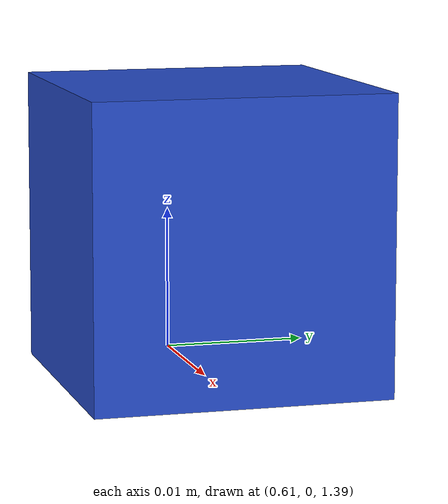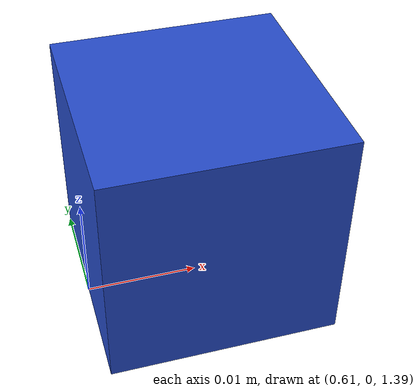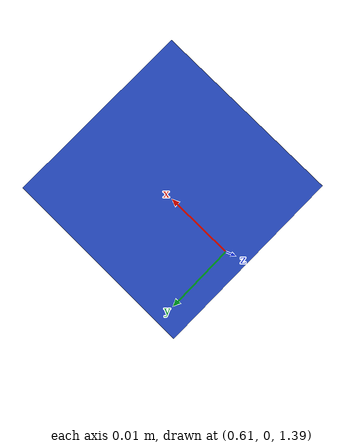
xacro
<?xml version="1.0" ?>
<robot name="sawyer_top_camera" xmlns:xacro="http://www.ros.org/wiki/xacro">

  <link name="world" />

  <xacro:property name="cameraSize" value="0.02" />
  <xacro:property name="cameraMass" value="0.02" />

<link name="camera">
  <collision>
    <origin xyz="0 0 0" rpy="0 0 0"/>
    <geometry>
      <box size="${cameraSize} ${cameraSize} ${cameraSize}"/>
    </geometry>
  </collision>

  <visual>
    <origin xyz="0 0 0" rpy="0 0 0"/>
    <geometry>
      <box size="${cameraSize} ${cameraSize} ${cameraSize}"/>
    </geometry>
    <material name="blue"/>
  </visual>

  <inertial>
        <mass value="0.001" />
        <origin xyz="0 0 0" rpy="0 0 0" />
        <inertia ixx="0.0001" ixy="0" ixz="0" iyy="0.0001" iyz="0" izz="0.0001"/>
  </inertial>
</link>

<joint name="camera_joint" type="fixed">
    <parent link="world" />
    <child link = "camera" />
    <origin xyz="0.62 0.0 1.4" rpy="0.0 1.57 3.14" />
  </joint>

  <gazebo reference="camera">
  <material>Gazebo/GreyTransparent</material>
 <sensor type="camera" name="camera1">
    <update_rate>30.0</update_rate>
    <camera name="head">
      <horizontal_fov>1.3962634</horizontal_fov>
      <image>
        <width>200</width>
        <height>200</height>
        <format>R8G8B8</format>
      </image>
      <clip>
        <near>0.02</near>
        <far>300</far>
      </clip>
    </camera>
    <plugin name="camera_controller" filename="libgazebo_ros_camera.so">
      <alwaysOn>true</alwaysOn>
      <updateRate>0.0</updateRate>
      <cameraName>top_camera/camera</cameraName>
      <imageTopicName>image_raw</imageTopicName>
      <cameraInfoTopicName>camera_info</cameraInfoTopicName>
      <frameName>camera_link</frameName>
      <hackBaseline>0.07</hackBaseline>
      <distortionK1>0.0</distortionK1>
      <distortionK2>0.0</distortionK2>
      <distortionK3>0.0</distortionK3>
      <distortionT1>0.0</distortionT1>
      <distortionT2>0.0</distortionT2>
    </plugin>

  </sensor>

 </gazebo>

</robot>
